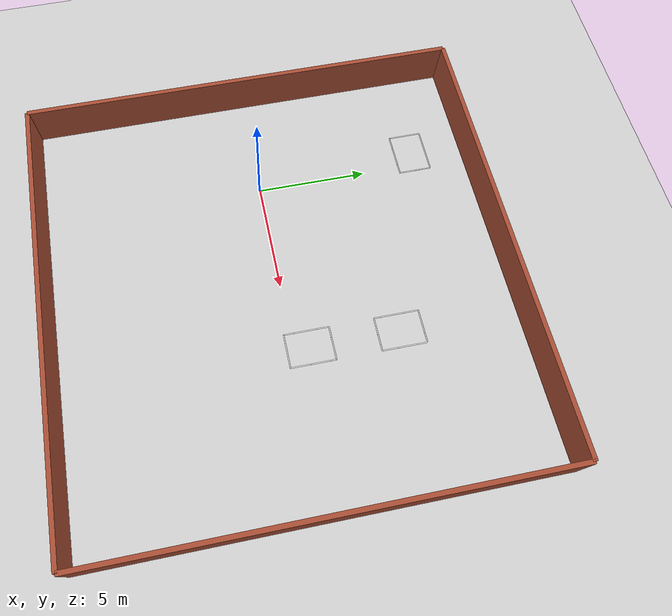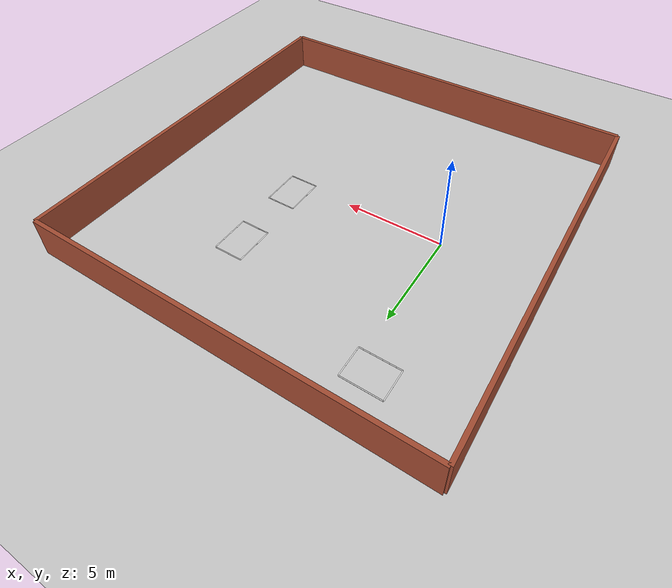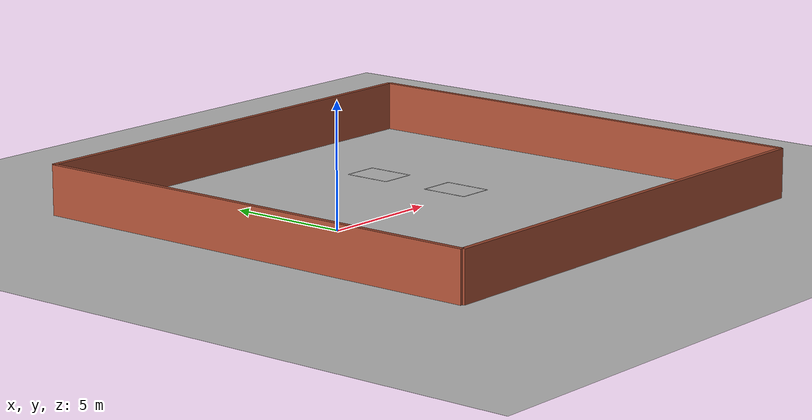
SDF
<sdf version="1.7">
 <world name="default">
  <light name="sun" type="directional">
   <pose>0 0 10 0 -0 0</pose>
   <diffuse>0.8 0.8 0.8 1</diffuse>
   <specular>0.2 0.2 0.2 1</specular>
   <attenuation>
    <range>1000</range>
    <constant>0.9</constant>
    <linear>0.01</linear>
    <quadratic>0.001</quadratic>
   </attenuation>
   <direction>-0.5 0.1 -0.9</direction>
   <spot><inner_angle>0</inner_angle><outer_angle>0</outer_angle><falloff>0</falloff></spot>
  </light>
  <model name="ground_plane">
   <static>1</static>
   <link name="link">
    <collision name="collision">
     <geometry><plane><normal>0 0 1</normal><size>100 100</size></plane></geometry>
     <surface><friction><ode><mu>100</mu><mu2>50</mu2></ode></friction></surface>
    </collision>
    <visual name="visual">
     <cast_shadows>0</cast_shadows>
     <geometry><plane><normal>0 0 1</normal><size>100 100</size></plane></geometry>
     <material>
      <script><uri>file://media/materials/scripts/gazebo.material</uri><name>Gazebo/Grey</name></script>
     </material>
    </visual>
   </link>
  </model>
  <gravity>0 0 -9.8</gravity>
  <magnetic_field>6e-06 2.3e-05 -4.2e-05</magnetic_field>
  <atmosphere type="adiabatic"/>
  <physics type="ode">
   <max_step_size>0.001</max_step_size>
   <real_time_factor>1</real_time_factor>
   <real_time_update_rate>1000</real_time_update_rate>
  </physics>
  <scene><ambient>0.4 0.4 0.4 1</ambient><background>0.7 0.7 0.7 1</background><shadows>1</shadows></scene>
  <audio><device>default</device></audio>
  <spherical_coordinates>
   <surface_model>EARTH_WGS84</surface_model>
   <latitude_deg>0</latitude_deg>
   <longitude_deg>0</longitude_deg>
   <elevation>0</elevation>
   <heading_deg>0</heading_deg>
  </spherical_coordinates>
  <model name="parking_slot_1">
   <static>1</static>
   <pose>8.0 0.7 0 0 0 1.57</pose>
   <link name="lines">
    <visual name="front_line">
     <pose>1.0 0 0.001 0 0 0</pose>
     <geometry><box><size>0.05 1.5 0.002</size></box></geometry>
     <material>
      <script><uri>file://media/materials/scripts/gazebo.material</uri><name>Gazebo/White</name></script>
     </material>
    </visual>
    <visual name="back_line">
     <pose>-1.0 0 0.001 0 0 0</pose>
     <geometry><box><size>0.05 1.5 0.002</size></box></geometry>
     <material>
      <script><uri>file://media/materials/scripts/gazebo.material</uri><name>Gazebo/White</name></script>
     </material>
    </visual>
    <visual name="left_line">
     <pose>0 0.75 0.001 0 0 0</pose>
     <geometry><box><size>2.0 0.05 0.002</size></box></geometry>
     <material>
      <script><uri>file://media/materials/scripts/gazebo.material</uri><name>Gazebo/White</name></script>
     </material>
    </visual>
    <visual name="right_line">
     <pose>0 -0.75 0.001 0 0 0</pose>
     <geometry><box><size>2.0 0.05 0.002</size></box></geometry>
     <material>
      <script><uri>file://media/materials/scripts/gazebo.material</uri><name>Gazebo/White</name></script>
     </material>
    </visual>
   </link>
  </model>
  <model name="parking_slot_2">
   <static>1</static>
   <pose>8.0 4.7 0 0 0 1.57</pose>
   <link name="lines">
    <visual name="front_line">
     <pose>1.0 0 0.001 0 0 0</pose>
     <geometry><box><size>0.05 1.5 0.002</size></box></geometry>
     <material>
      <script><uri>file://media/materials/scripts/gazebo.material</uri><name>Gazebo/White</name></script>
     </material>
    </visual>
    <visual name="back_line">
     <pose>-1.0 0 0.001 0 0 0</pose>
     <geometry><box><size>0.05 1.5 0.002</size></box></geometry>
     <material>
      <script><uri>file://media/materials/scripts/gazebo.material</uri><name>Gazebo/White</name></script>
     </material>
    </visual>
    <visual name="left_line">
     <pose>0 0.75 0.001 0 0 0</pose>
     <geometry><box><size>2.0 0.05 0.002</size></box></geometry>
     <material>
      <script><uri>file://media/materials/scripts/gazebo.material</uri><name>Gazebo/White</name></script>
     </material>
    </visual>
    <visual name="right_line">
     <pose>0 -0.75 0.001 0 0 0</pose>
     <geometry><box><size>2.0 0.05 0.002</size></box></geometry>
     <material>
      <script><uri>file://media/materials/scripts/gazebo.material</uri><name>Gazebo/White</name></script>
     </material>
    </visual>
   </link>
  </model>
  <model name="parking_slot_3">
   <static>1</static>
   <pose>-0.7 7.5  0 0 0 0</pose>
   <link name="lines">
    <visual name="front_line">
     <pose>1.0 0 0.001 0 0 0</pose>
     <geometry><box><size>0.05 1.5 0.002</size></box></geometry>
     <material>
      <script><uri>file://media/materials/scripts/gazebo.material</uri><name>Gazebo/White</name></script>
     </material>
    </visual>
    <visual name="back_line">
     <pose>-1.0 0 0.001 0 0 0</pose>
     <geometry><box><size>0.05 1.5 0.002</size></box></geometry>
     <material>
      <script><uri>file://media/materials/scripts/gazebo.material</uri><name>Gazebo/White</name></script>
     </material>
    </visual>
    <visual name="left_line">
     <pose>0 0.75 0.001 0 0 0</pose>
     <geometry><box><size>2.0 0.05 0.002</size></box></geometry>
     <material>
      <script><uri>file://media/materials/scripts/gazebo.material</uri><name>Gazebo/White</name></script>
     </material>
    </visual>
    <visual name="right_line">
     <pose>0 -0.75 0.001 0 0 0</pose>
     <geometry><box><size>2.0 0.05 0.002</size></box></geometry>
     <material>
      <script><uri>file://media/materials/scripts/gazebo.material</uri><name>Gazebo/White</name></script>
     </material>
    </visual>
   </link>
  </model>
  <model name="room_walls">
   <static>1</static>
   <link name="wall_front">
    <pose>15 0 1 0 0 0</pose>
    <collision name="collision"><geometry><box><size>0.2 20 2</size></box></geometry></collision>
    <visual name="visual">
     <geometry><box><size>0.2 20 2</size></box></geometry>
     <material>
      <script><uri>file://media/materials/scripts/gazebo.material</uri><name>Gazebo/Bricks</name></script>
     </material>
    </visual>
   </link>
   <link name="wall_back">
    <pose>-5 0 1 0 0 0</pose>
    <collision name="collision"><geometry><box><size>0.2 20 2</size></box></geometry></collision>
    <visual name="visual">
     <geometry><box><size>0.2 20 2</size></box></geometry>
     <material>
      <script><uri>file://media/materials/scripts/gazebo.material</uri><name>Gazebo/Bricks</name></script>
     </material>
    </visual>
   </link>
   <link name="wall_left">
    <pose>5 10 1 0 0 0</pose>
    <collision name="collision"><geometry><box><size>20 0.2 2</size></box></geometry></collision>
    <visual name="visual">
     <geometry><box><size>20 0.2 2</size></box></geometry>
     <material>
      <script><uri>file://media/materials/scripts/gazebo.material</uri><name>Gazebo/Bricks</name></script>
     </material>
    </visual>
   </link>
   <link name="wall_right">
    <pose>5 -10 1 0 0 0</pose>
    <collision name="collision"><geometry><box><size>20 0.2 2</size></box></geometry></collision>
    <visual name="visual">
     <geometry><box><size>20 0.2 2</size></box></geometry>
     <material>
      <script><uri>file://media/materials/scripts/gazebo.material</uri><name>Gazebo/Bricks</name></script>
     </material>
    </visual>
   </link>
  </model>
 </world>
</sdf>
